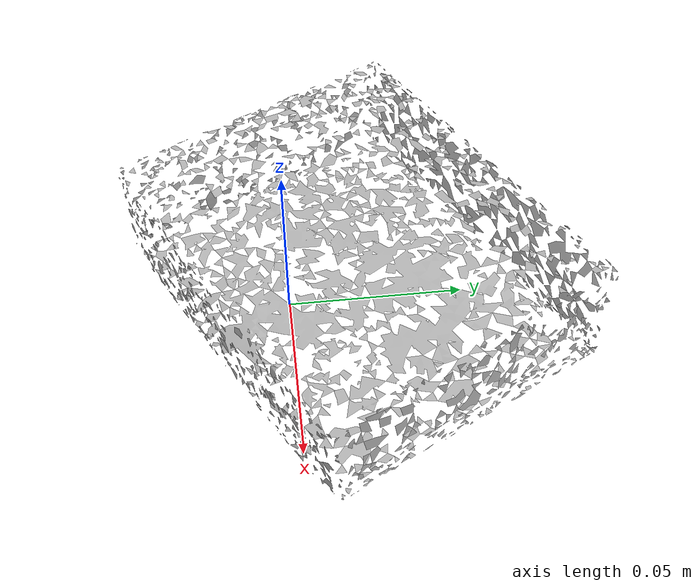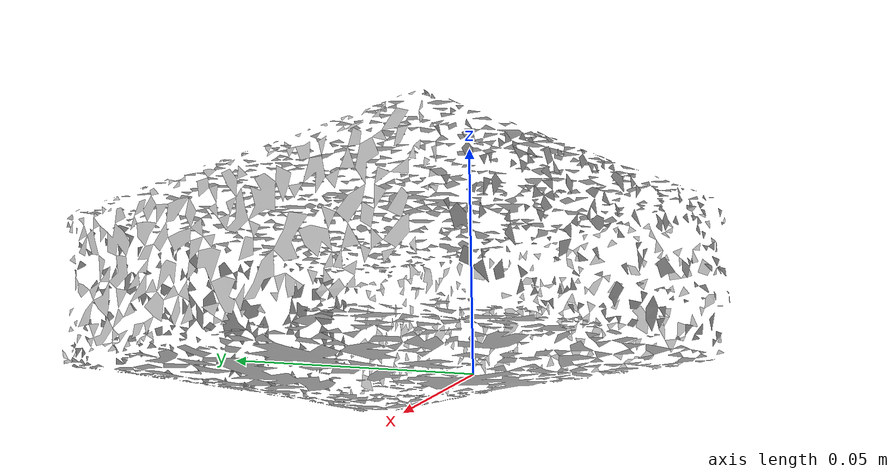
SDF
<?xml version='1.0'?>
<sdf version="1.4">
  <model name="pudding_box">
    <static>false</static>
    <link name="link">
      <inertial>
        <pose>0.0015176495741759271 0.018795882107541014 0.01865770198611293 -2.8468447010426696 -1.546957833673844 -2.9506144314638787</pose>
        <mass>0.00034177208377669197</mass>
        <inertia>
          <ixx>5.514501243481537e-07</ixx>
          <ixy>3.202438019788875e-23</ixy>
          <ixz>-1.6263280006379202e-24</ixz>
          <iyy>3.722128497133943e-07</iyy>
          <iyz>2.2126640368590986e-23</iyz>
          <izz>2.5064605144990346e-07</izz>
        </inertia>
      </inertial>
      <collision name="collision">
        <geometry>
          <mesh>
            <!-- Use a downsampled mesh for collisions -->
            <uri>model://008_pudding_box/downsampled.obj</uri>
	        </mesh>
        </geometry>
        <surface>
      </surface>
      </collision>
      <visual name="visual">
        <geometry>
          <mesh>
            <uri>model://008_pudding_box/google_16k/textured.obj</uri>
	        </mesh>
        </geometry>
        <material>
          <script>
            <uri>model://008_pudding_box/pudding_box.material</uri>
            <name>pudding_box</name>
          </script>
        </material>
      </visual>
    </link>
  </model>
</sdf>
